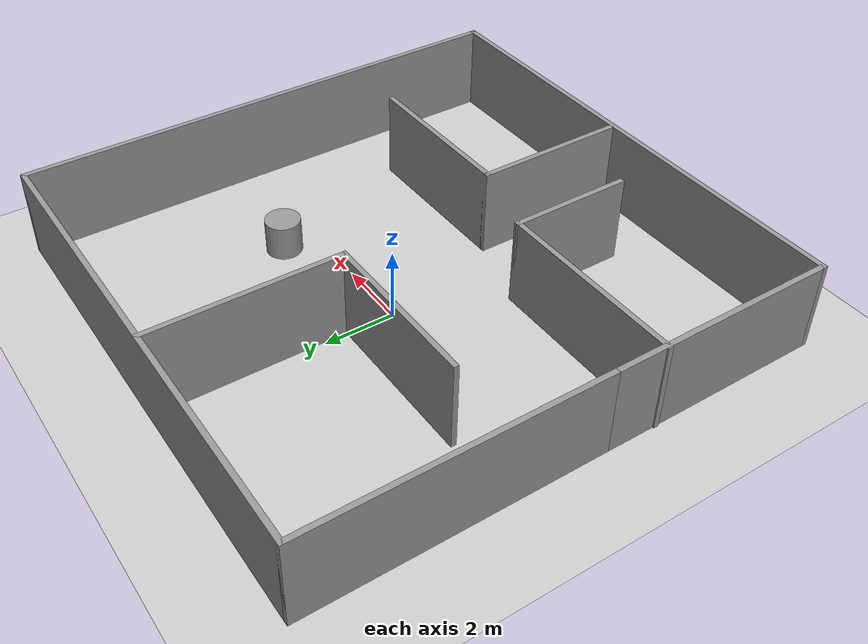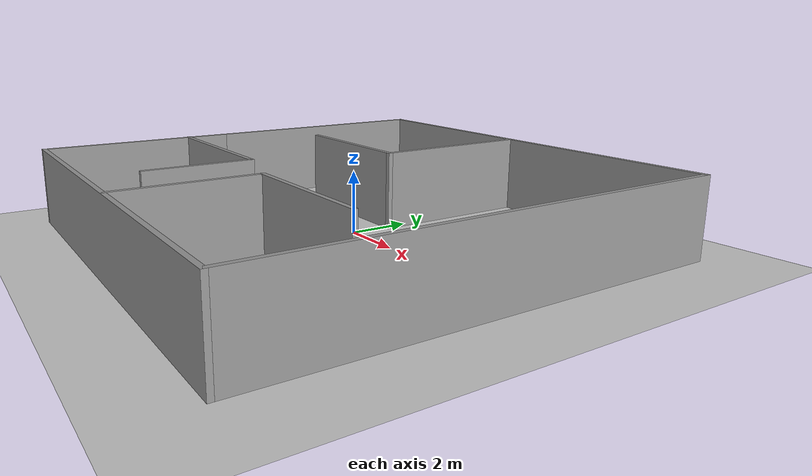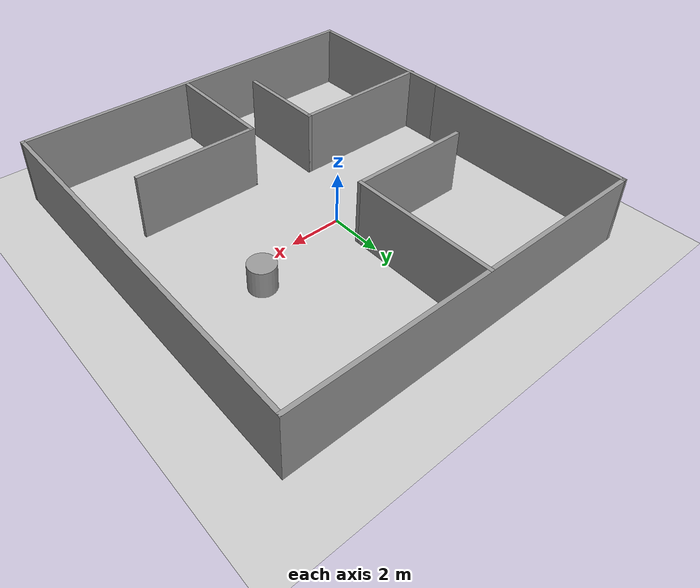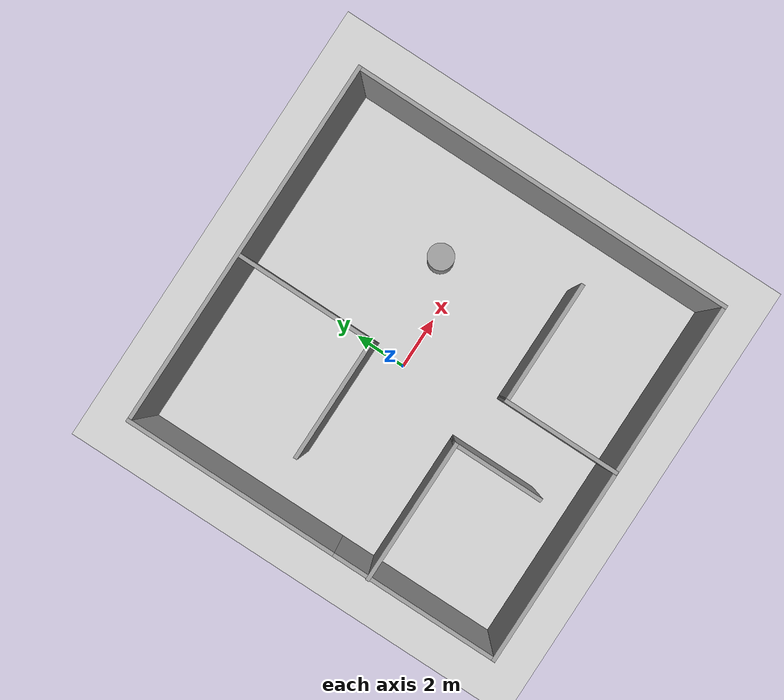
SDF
<sdf version="1.7">
 <world name="default">
  <light name="sun" type="directional">
   <pose>0 0 10 0 -0 0</pose>
   <diffuse>0.8 0.8 0.8 1</diffuse>
   <specular>0.2 0.2 0.2 1</specular>
   <attenuation>
    <range>1000</range>
    <constant>0.9</constant>
    <linear>0.01</linear>
    <quadratic>0.001</quadratic>
   </attenuation>
   <direction>-0.5 0.1 -0.9</direction>
   <spot><inner_angle>0</inner_angle><outer_angle>0</outer_angle><falloff>0</falloff></spot>
  </light>
  <model name="ground_plane">
   <static>1</static>
   <link name="link">
    <collision name="collision">
     <geometry><plane><normal>0 0 1</normal><size>100 100</size></plane></geometry>
     <surface><friction><ode><mu>100</mu><mu2>50</mu2></ode></friction></surface>
    </collision>
    <visual name="visual">
     <cast_shadows>0</cast_shadows>
     <geometry><plane><normal>0 0 1</normal><size>100 100</size></plane></geometry>
     <material>
      <script><uri>file://media/materials/scripts/gazebo.material</uri><name>Gazebo/Grey</name></script>
     </material>
    </visual>
   </link>
  </model>
  <gravity>0 0 -9.8</gravity>
  <magnetic_field>6e-06 2.3e-05 -4.2e-05</magnetic_field>
  <atmosphere type="adiabatic"/>
  <physics type="ode">
   <max_step_size>0.001</max_step_size>
   <real_time_factor>1</real_time_factor>
   <real_time_update_rate>1000</real_time_update_rate>
  </physics>
  <scene><ambient>0.4 0.4 0.4 1</ambient><background>0.7 0.7 0.7 1</background><shadows>1</shadows></scene>
  <audio><device>default</device></audio>
  <spherical_coordinates>
   <surface_model>EARTH_WGS84</surface_model>
   <latitude_deg>0</latitude_deg>
   <longitude_deg>0</longitude_deg>
   <elevation>0</elevation>
   <heading_deg>0</heading_deg>
  </spherical_coordinates>
  <model name="room">
   <pose>0.521471 -0.67 0 0 -0 0</pose>
   <link name="Wall_11">
    <collision name="Wall_11_Collision">
     <geometry><box><size>5.5 0.15 2.5</size></box></geometry>
     <pose>0 0 1.25 0 -0 0</pose>
    </collision>
    <visual name="Wall_11_Visual">
     <pose>0 0 1.25 0 -0 0</pose>
     <geometry><box><size>5.5 0.15 2.5</size></box></geometry>
     <material>
      <script><uri>file://media/materials/scripts/gazebo.material</uri><name>Gazebo/Grey</name></script>
      <ambient>1 1 1 1</ambient>
     </material>
     <meta><layer>0</layer></meta>
    </visual>
    <pose>-4.39353 -2.30156 0 0 -0 0</pose>
   </link>
   <link name="Wall_12">
    <collision name="Wall_12_Collision">
     <geometry><box><size>3.5 0.15 2.5</size></box></geometry>
     <pose>0 0 1.25 0 -0 0</pose>
    </collision>
    <visual name="Wall_12_Visual">
     <pose>0 0 1.25 0 -0 0</pose>
     <geometry><box><size>3.5 0.15 2.5</size></box></geometry>
     <material>
      <script><uri>file://media/materials/scripts/gazebo.material</uri><name>Gazebo/Grey</name></script>
      <ambient>1 1 1 1</ambient>
     </material>
     <meta><layer>0</layer></meta>
    </visual>
    <pose>-1.71853 -3.97656 0 0 -0 -1.5708</pose>
   </link>
   <link name="Wall_14">
    <collision name="Wall_14_Collision">
     <geometry><box><size>4.5 0.15 2.5</size></box></geometry>
     <pose>0 0 1.25 0 -0 0</pose>
    </collision>
    <visual name="Wall_14_Visual">
     <pose>0 0 1.25 0 -0 0</pose>
     <geometry><box><size>4.5 0.15 2.5</size></box></geometry>
     <material>
      <script><uri>file://media/materials/scripts/gazebo.material</uri><name>Gazebo/Grey</name></script>
      <ambient>1 1 1 1</ambient>
     </material>
     <meta><layer>0</layer></meta>
    </visual>
    <pose>0.42803 -5.10697 0 0 -0 1.5708</pose>
   </link>
   <link name="Wall_15">
    <collision name="Wall_15_Collision">
     <geometry><box><size>4.75 0.15 2.5</size></box></geometry>
     <pose>0 0 1.25 0 -0 0</pose>
    </collision>
    <visual name="Wall_15_Visual">
     <pose>0 0 1.25 0 -0 0</pose>
     <geometry><box><size>4.75 0.15 2.5</size></box></geometry>
     <material>
      <script><uri>file://media/materials/scripts/gazebo.material</uri><name>Gazebo/Grey</name></script>
      <ambient>1 1 1 1</ambient>
     </material>
     <meta><layer>0</layer></meta>
    </visual>
    <pose>2.72803 -2.93197 0 0 -0 0</pose>
   </link>
   <link name="Wall_2">
    <collision name="Wall_2_Collision">
     <geometry><box><size>8.25 0.15 2.5</size></box></geometry>
     <pose>0 0 1.25 0 -0 0</pose>
    </collision>
    <visual name="Wall_2_Visual">
     <pose>0 0 1.25 0 -0 0</pose>
     <geometry><box><size>8.25 0.15 2.5</size></box></geometry>
     <material>
      <script><uri>file://media/materials/scripts/gazebo.material</uri><name>Gazebo/Grey</name></script>
      <ambient>1 1 1 1</ambient>
     </material>
     <meta><layer>0</layer></meta>
    </visual>
    <pose>-7.03147 3.25 0 0 -0 1.5708</pose>
   </link>
   <link name="Wall_3">
    <collision name="Wall_3_Collision">
     <geometry><box><size>14.25 0.15 2.5</size></box></geometry>
     <pose>0 0 1.25 0 -0 0</pose>
    </collision>
    <visual name="Wall_3_Visual">
     <pose>0 0 1.25 0 -0 0</pose>
     <geometry><box><size>14.25 0.15 2.5</size></box></geometry>
     <material>
      <script><uri>file://media/materials/scripts/gazebo.material</uri><name>Gazebo/Grey</name></script>
      <ambient>1 1 1 1</ambient>
     </material>
     <meta><layer>0</layer></meta>
    </visual>
    <pose>0.018529 7.3 0 0 -0 0</pose>
   </link>
   <link name="Wall_4">
    <collision name="Wall_4_Collision">
     <geometry><box><size>14.75 0.15 2.5</size></box></geometry>
     <pose>0 0 1.25 0 -0 0</pose>
    </collision>
    <visual name="Wall_4_Visual">
     <pose>0 0 1.25 0 -0 0</pose>
     <geometry><box><size>14.75 0.15 2.5</size></box></geometry>
     <material>
      <script><uri>file://media/materials/scripts/gazebo.material</uri><name>Gazebo/Grey</name></script>
      <ambient>1 1 1 1</ambient>
     </material>
     <meta><layer>0</layer></meta>
    </visual>
    <pose>7.06853 0 0 0 -0 -1.5708</pose>
   </link>
   <link name="Wall_5">
    <collision name="Wall_5_Collision">
     <geometry><box><size>14.25 0.15 2.5</size></box></geometry>
     <pose>0 0 1.25 0 -0 0</pose>
    </collision>
    <visual name="Wall_5_Visual">
     <pose>0 0 1.25 0 -0 0</pose>
     <geometry><box><size>14.25 0.15 2.5</size></box></geometry>
     <material>
      <script><uri>file://media/materials/scripts/gazebo.material</uri><name>Gazebo/Grey</name></script>
      <ambient>1 1 1 1</ambient>
     </material>
     <meta><layer>0</layer></meta>
    </visual>
    <pose>0.018529 -7.3 0 0 -0 3.14159</pose>
   </link>
   <link name="Wall_6">
    <collision name="Wall_6_Collision">
     <geometry><box><size>6.5 0.15 2.5</size></box></geometry>
     <pose>0 0 1.25 0 -0 0</pose>
    </collision>
    <visual name="Wall_6_Visual">
     <pose>0 0 1.25 0 -0 0</pose>
     <geometry><box><size>6.5 0.15 2.5</size></box></geometry>
     <material>
      <script><uri>file://media/materials/scripts/gazebo.material</uri><name>Gazebo/Grey</name></script>
      <ambient>1 1 1 1</ambient>
     </material>
     <meta><layer>0</layer></meta>
    </visual>
    <pose>-7.03147 -4.125 0 0 -0 1.5708</pose>
   </link>
   <link name="Wall_8">
    <collision name="Wall_8_Collision">
     <geometry><box><size>5.5 0.15 2.5</size></box></geometry>
     <pose>0 0 1.25 0 -0 0</pose>
    </collision>
    <visual name="Wall_8_Visual">
     <pose>0 0 1.25 0 -0 0</pose>
     <geometry><box><size>5.5 0.15 2.5</size></box></geometry>
     <material>
      <script><uri>file://media/materials/scripts/gazebo.material</uri><name>Gazebo/Grey</name></script>
      <ambient>1 1 1 1</ambient>
     </material>
     <meta><layer>0</layer></meta>
    </visual>
    <pose>-0.376099 4.62111 0 0 -0 -1.5708</pose>
   </link>
   <link name="Wall_9">
    <collision name="Wall_9_Collision">
     <geometry><box><size>4.75 0.15 2.5</size></box></geometry>
     <pose>0 0 1.25 0 -0 0</pose>
    </collision>
    <visual name="Wall_9_Visual">
     <pose>0 0 1.25 0 -0 0</pose>
     <geometry><box><size>4.75 0.15 2.5</size></box></geometry>
     <material>
      <script><uri>file://media/materials/scripts/gazebo.material</uri><name>Gazebo/Grey</name></script>
      <ambient>1 1 1 1</ambient>
     </material>
     <meta><layer>0</layer></meta>
    </visual>
    <pose>-2.6761 1.94612 0 0 -0 3.14159</pose>
   </link>
   <static>1</static>
  </model>
  <model name="unit_cylinder">
   <pose>3.98564 0.980752 0.499997 3e-06 4e-06 -0</pose>
   <link name="link">
    <inertial>
     <mass>1</mass>
     <inertia><ixx>0.145833</ixx><ixy>0</ixy><ixz>0</ixz><iyy>0.145833</iyy><iyz>0</iyz><izz>0.125</izz></inertia>
    </inertial>
    <collision name="collision">
     <geometry><cylinder><radius>0.5</radius><length>1</length></cylinder></geometry>
    </collision>
    <visual name="visual">
     <geometry><cylinder><radius>0.5</radius><length>1</length></cylinder></geometry>
     <material>
      <script><name>Gazebo/Grey</name><uri>file://media/materials/scripts/gazebo.material</uri></script>
     </material>
    </visual>
   </link>
  </model>
 </world>
</sdf>
